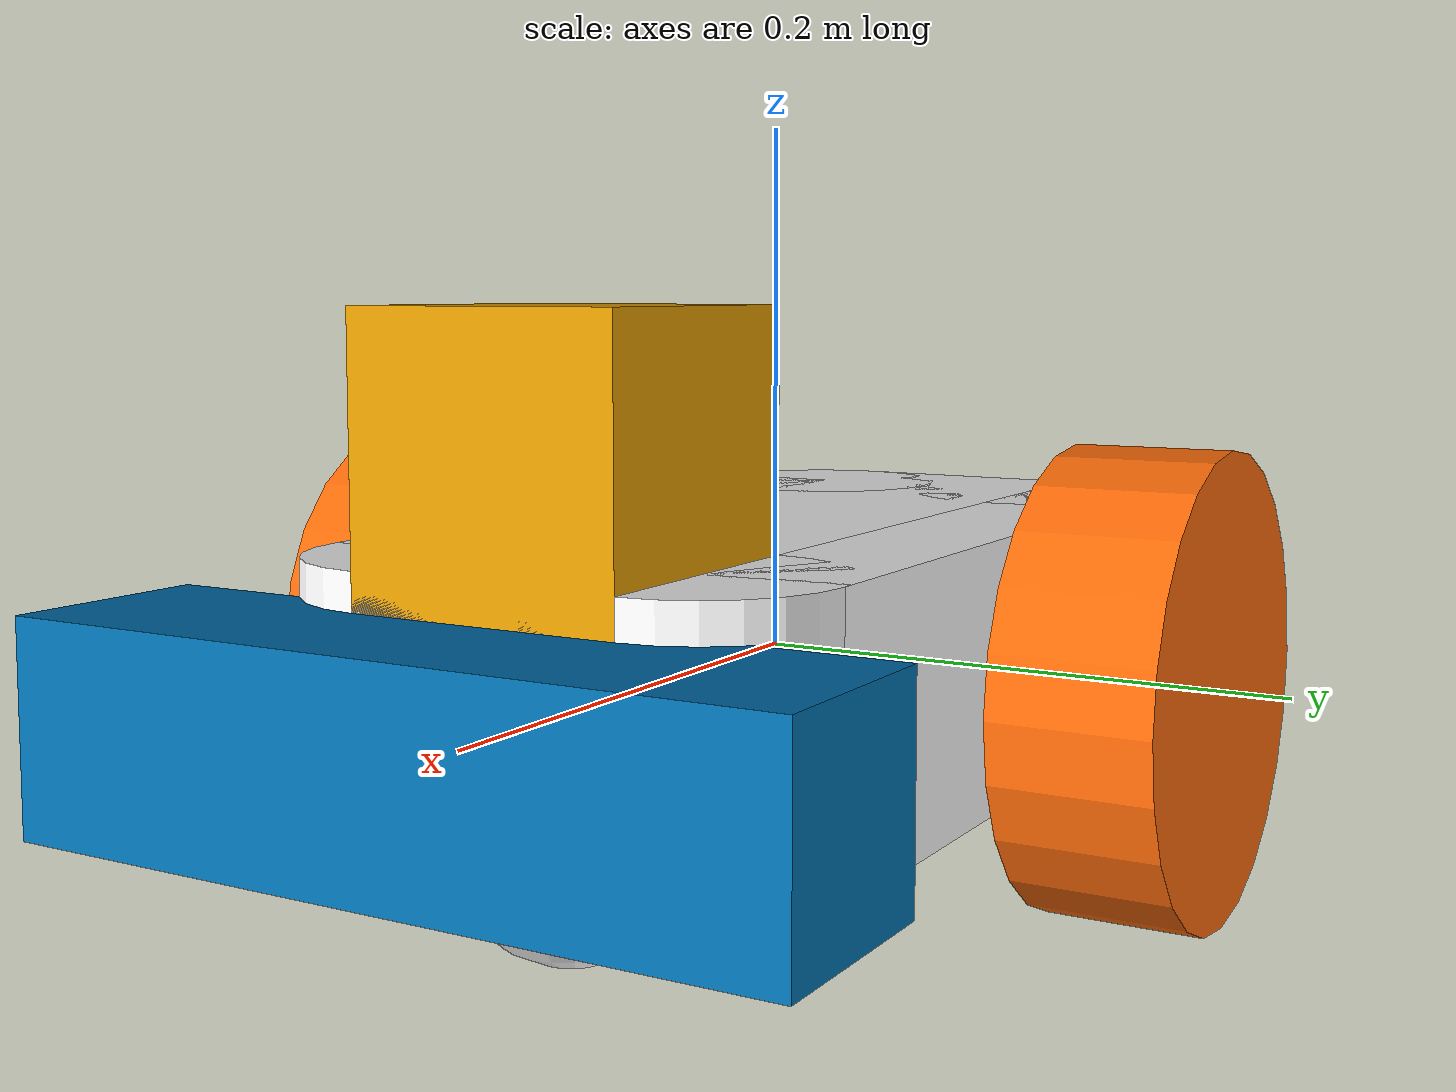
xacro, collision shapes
<?xml version='1.0'?>

<robot name="pramod_bot" xmlns:xacro="http://www.ros.org/wiki/xacro">

  <xacro:include filename="$(find slam_project)/urdf/pramod_bot.gazebo" />

  <material name="skyblue">
    <color rgba="0.13 0.44 0.70 1.0"/>
  </material>

  <material name="white">
    <color rgba="1.0 1.0 1.0 1.0"/>
  </material>

  <material name="orange">
    <color rgba="${255/255} ${108/255} ${10/255} 1.0"/>
  </material>

  <link name="robot_footprint"></link>

  <joint name="robot_footprint_joint" type="fixed">
    <origin xyz="0 0 0" rpy="0 0 0" />
    <parent link="robot_footprint"/>
    <child link="chassis" />
  </joint>

  <link name='chassis'>
    <pose>0 0 0.1 0 0 0</pose>

    <inertial>
      <mass value="15.0"/>
      <origin xyz="0.0 0 0" rpy=" 0 0 0"/>
      <inertia
          ixx="0.1" ixy="0" ixz="0"
          iyy="0.1" iyz="0"
          izz="0.1"
      />
    </inertial>

    <collision name='base_collision'>
      <origin xyz="0 0 0" rpy=" 0 0 0"/>
      <geometry>
        <box size="0.38 0.1 0.1"/>
      </geometry>
    </collision>

    <visual name='base_visual'>
      <origin xyz="0 0 0" rpy=" 0 0 0"/>
      <geometry>
        <box size="0.38 0.1 0.1"/>
      </geometry>
      <material name="white"/>
    </visual>

    <collision name='left_wing_collision'>
      <origin xyz="0 0.075 0" rpy=" 0 0 0"/>
      <geometry>
        <box size="0.28 0.05 0.1"/>
      </geometry>
    </collision>

    <visual name='left_wing_visual'>
      <origin xyz="0 0.075 0" rpy=" 0 0 0"/>
      <geometry>
        <box size="0.28 0.05 0.1"/>
      </geometry>
      <material name="white"/>
    </visual>

    <collision name='right_wing_collision'>
      <origin xyz="0 -0.075 0" rpy=" 0 0 0"/>
      <geometry>
        <box size="0.28 0.05 0.1"/>
      </geometry>
    </collision>

    <visual name='right_wing_visual'>
      <origin xyz="0 -0.075 0" rpy=" 0 0 0"/>
      <geometry>
        <box size="0.28 0.05 0.1"/>
      </geometry>
      <material name="white"/>
    </visual>

    <collision name='front_left_fender_collision'>
      <origin xyz="0.14 0.05 0" rpy="0 0 1.5707"/>
      <geometry>
        <cylinder length="0.1" radius="0.05"/>
      </geometry>
    </collision>

    <visual name='front_left_fender_visual'>
      <origin xyz="0.14 0.05 0" rpy="0 0 1.5707"/>
      <geometry>
        <cylinder length="0.1" radius="0.05"/>
      </geometry>
    </visual>

    <collision name='front_right_fender_collision'>
      <origin xyz="0.14 -0.05 0" rpy="0 0 1.5707"/>
      <geometry>
        <cylinder length="0.1" radius="0.05"/>
      </geometry>
    </collision>

    <visual name='front_right_fender_visual'>
      <origin xyz="0.14 -0.05 0" rpy="0 0 1.5707"/>
      <geometry>
        <cylinder length="0.1" radius="0.05"/>
      </geometry>
    </visual>

    <collision name='rear_right_fender_collision'>
      <origin xyz="-0.14 -0.05 0" rpy="0 0 1.5707"/>
      <geometry>
        <cylinder length="0.1" radius="0.05"/>
      </geometry>
    </collision>

    <visual name='rear_right_fender_visual'>
      <origin xyz="-0.14 -0.05 0" rpy="0 0 1.5707"/>
      <geometry>
        <cylinder length="0.1" radius="0.05"/>
      </geometry>
    </visual>

    <collision name='rear_left_fender_collision'>
      <origin xyz="-0.14 0.05 0" rpy="0 0 1.5707"/>
      <geometry>
        <cylinder length="0.1" radius="0.05"/>
      </geometry>
    </collision>

    <visual name='rear_left_fender_visual'>
      <origin xyz="-0.14 0.05 0" rpy="0 0 1.5707"/>
      <geometry>
        <cylinder length="0.1" radius="0.05"/>
      </geometry>
    </visual>

    <collision name='front_caster_collision'>
      <origin xyz="0.14 0 -0.042" rpy=" 0 0 0"/>
      <geometry>
        <sphere radius="0.042"/>
      </geometry>
      <surface>
        <friction>
          <ode>
            <mu>0</mu>
            <mu2>0</mu2>
            <slip1>1.0</slip1>
            <slip2>1.0</slip2>
          </ode>
        </friction>
      </surface>
    </collision>

    <visual name='front_caster_visual'>
      <origin xyz="0.14 0 -0.042" rpy=" 0 0 0"/>
      <geometry>
        <sphere radius="0.042"/>
      </geometry>
    </visual>

    <collision name='back_caster_collision'>
      <origin xyz="-0.14 0 -0.042" rpy=" 0 0 0"/>
      <geometry>
        <sphere radius="0.042"/>
      </geometry>
      <surface>
        <friction>
          <ode>
            <mu>0</mu>
            <mu2>0</mu2>
            <slip1>1.0</slip1>
            <slip2>1.0</slip2>
          </ode>
        </friction>
      </surface>
    </collision>

    <visual name='back_caster_visual'>
      <origin xyz="-0.14 0 -0.042" rpy=" 0 0 0"/>
      <geometry>
        <sphere radius="0.042"/>
      </geometry>
    </visual>
  </link>

  <!-- front wheels -->
  <link name='front_left_wheel'>
    <pose>0 0 0.1 0 0 0</pose>

    <inertial>
      <mass value="5.0"/>
      <origin xyz="0 0 0" rpy=" 0 1.5707 1.5707"/>
      <inertia
          ixx="0.1" ixy="0" ixz="0"
          iyy="0.1" iyz="0"
          izz="0.1"
      />
    </inertial>

    <collision name='front_left_wheel_collision'>
      <origin xyz="0 0 0" rpy=" 0 1.5707 1.5707"/>
      <geometry>
        <cylinder length="0.056" radius="0.084"/>
      </geometry>
    </collision>

    <visual name='front_left_wheel_visual'>
      <origin xyz="0 0 0" rpy=" 0 1.5707 1.5707"/>
      <material name="orange"/>
      <geometry>
        <cylinder length="0.056" radius="0.084"/>
      </geometry>
    </visual>
  </link>

  <joint type="continuous" name="front_left_wheel_hinge">
    <origin xyz="0 0.15 0" rpy="0 0 0"/>
    <child link="front_left_wheel"/>
    <parent link="chassis"/>
    <axis xyz="0 1 0" rpy="0 0 0"/>
    <limit effort="10000" velocity="1000"/>
    <joint_properties damping="1.0" friction="1.0"/>
  </joint>

  <link name='front_right_wheel'>
    <pose>0 0 0.1 0 0 0</pose>

    <inertial>
      <mass value="5.0"/>
      <origin xyz="0 0 0" rpy=" 0 1.5707 1.5707"/>
      <inertia
          ixx="0.1" ixy="0" ixz="0"
          iyy="0.1" iyz="0"
          izz="0.1"
      />
    </inertial>

    <collision name='front_right_wheel_collision'>
      <origin xyz="0 0 0" rpy=" 0 1.5707 1.5707"/>
      <geometry>
        <cylinder length="0.056" radius="0.084"/>
      </geometry>
    </collision>

    <visual name='front_right_wheel_visual'>
      <origin xyz="0 0 0" rpy=" 0 1.5707 1.5707"/>
      <material name="orange"/>
      <geometry>
        <cylinder length="0.056" radius="0.084"/>
      </geometry>
    </visual>
  </link>

  <joint type="continuous" name="front_right_wheel_hinge">
    <origin xyz="0 -0.15 0" rpy="0 0 0"/>
    <child link="front_right_wheel"/>
    <parent link="chassis"/>
    <axis xyz="0 1 0" rpy="0 0 0"/>
    <limit effort="10000" velocity="1000"/>
    <joint_properties damping="1.0" friction="1.0"/>
  </joint>

  <!-- Kinect RGB camera frame -->
  <!-- Camera link contains visualization information -->
  <link name="camera_rgb_frame">
    <pose>0 0 0.1 0 0 0</pose>
    <inertial>
      <mass value="0.564"/>
      <origin xyz="0 0 0" rpy=" 0 0 0"/>
      <inertia
          ixx="0.003881243" ixy="0" ixz="0"
          iyy="0.000498940" iyz="0"
          izz="0.003879257"
      />
    </inertial>

    <collision name='camera_collision'>
      <origin xyz="0 0 0" rpy=" 0 0 0"/>
      <geometry>
        <box size="0.07271 0.27794 0.073"/>
      </geometry>
    </collision>

    <visual name='camera_visual'>
      <origin xyz="0 0 0" rpy="0 0 0"/>
      <geometry>
        <mesh filename="package://slam_project/meshes/kinect.dae"/>
      </geometry>
    </visual>
  </link>
  <joint name="camera_rgb_joint" type="fixed">
    <origin xyz="0.21 0  0" rpy="0 0 0"/>
    <parent link="chassis"/>
    <child link="camera_rgb_frame"/>
  </joint>

  <!-- Kinect RGB camera optical frame -->
  <link name="camera_rgb_optical_frame"/>
  <joint name="camera_rgb_optical_joint" type="fixed">
    <origin xyz="0 0 0" rpy="-1.571 0 -1.571"/>
    <parent link="camera_rgb_frame"/>
    <child link="camera_rgb_optical_frame"/>
  </joint>

  <!-- Kinect depth camera frame -->
  <link name="camera_depth_frame"/>
  <joint name="camera_depth_joint" type="fixed">
    <origin xyz="0 0 0" rpy="0 0 0"/>
    <parent link="camera_rgb_frame"/>
    <child link="camera_depth_frame"/>
  </joint>

  <!-- Kinect depth camera optical frame -->
  <link name="camera_depth_optical_frame"/>
  <joint name="camera_depth_optical_joint" type="fixed">
    <origin xyz="0 0 0" rpy="-1.571 0 -1.571"/>
    <parent link="camera_depth_frame"/>
    <child link="camera_depth_optical_frame"/>
  </joint>

  <!-- laser range finder -->
  <link name='hokuyo'>
    <pose>0 0 0.1 0 0 0</pose>

    <inertial>
      <mass value="0.1"/>
      <origin xyz="0 0 0" rpy=" 0 0 0"/>
      <inertia
          ixx="1e-6" ixy="0" ixz="0"
          iyy="1e-6" iyz="0"
          izz="1e-6"
      />
    </inertial>

    <collision name='hokuyo_collision'>
      <origin xyz="0 0 0" rpy=" 0 0 0"/>
      <geometry>
        <box size=".1 .1 .1"/>
      </geometry>
    </collision>

    <visual name='hokuyo_visual'>
      <origin xyz="0 0 0" rpy=" 0 0 0"/>
      <geometry>
        <mesh filename="package://slam_project/meshes/hokuyo.dae"/>
      </geometry>
    </visual>
  </link>

  <joint type="fixed" name="hokuyo_joint">
    <origin xyz="0.14 0.0 0.084" rpy="0 0 0"/>
    <child link="hokuyo"/>
    <parent link="chassis"/>
    <axis xyz="0 1 0" rpy="0 0 0"/>
    <limit effort="10000" velocity="1000"/>
    <joint_properties damping="1.0" friction="1.0"/>
  </joint>
</robot>
